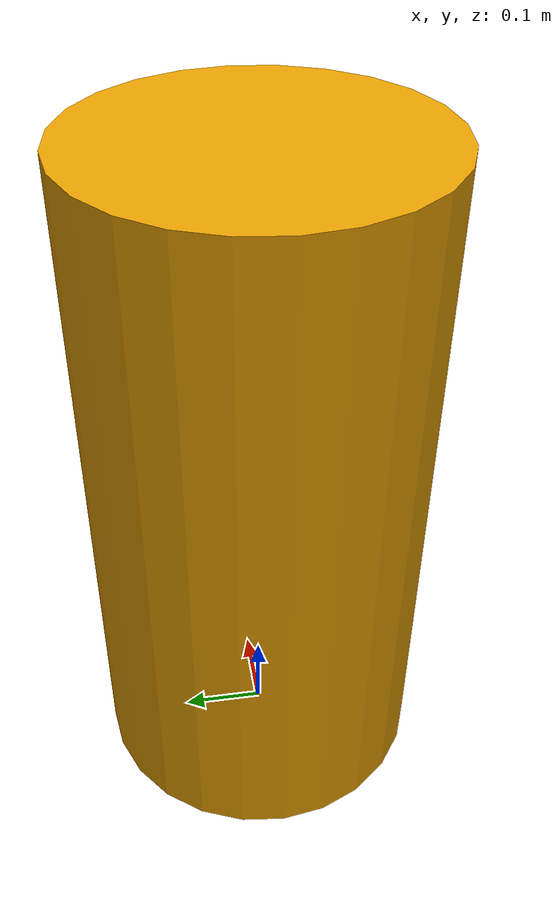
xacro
<?xml version="1.0"?>
<robot name="obs" xmlns:xacro="http://www.ros.org/wiki/xacro">

  <link name="obs">
    <collision>
      <origin xyz="0 0 0.4" rpy="0 0 0"/>
      <geometry>
        <cylinder radius="0.2" length="0.8"/>
      </geometry>
    </collision>

    <visual>
      <origin xyz="0 0 0.4" rpy="0 0 0"/>
      <geometry>
        <cylinder radius="0.2" length="0.8"/>
      </geometry>
    </visual>

    <inertial>
      <origin xyz="0 0 0.4" rpy="0 0 0"/>
      <mass value="40"/>
      <inertia
        ixx="0.0" ixy="0.0" ixz="0.4"
        iyy="0.0" iyz="0.0"
        izz="0.4"/>
      </inertial>
  </link>

  <gazebo reference="obs">
    <visual>
      <material>
        <ambient>0.7 0.1 0.1 1</ambient>
        <diffuse>0.7 0.7 0.7 1</diffuse>
        <specular>0.01 0.01 0.01 1</specular>
        <emissive>0 0 0 1</emissive>
      </material>
    </visual>
  </gazebo>

</robot>
